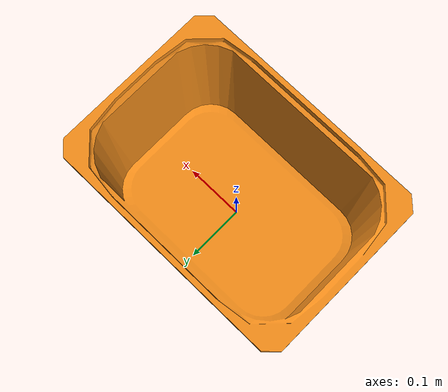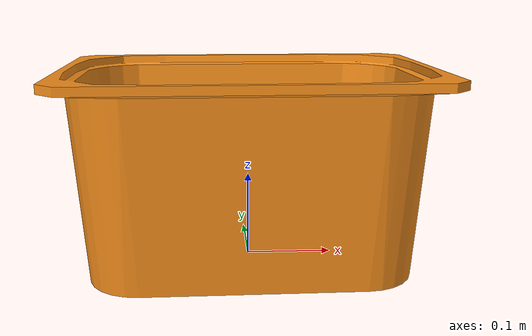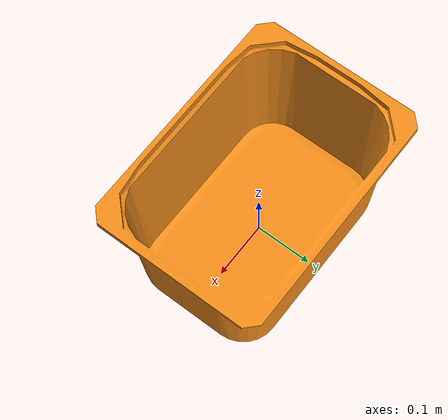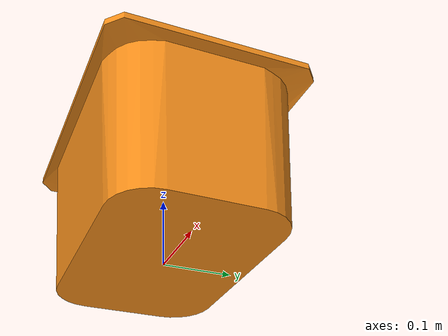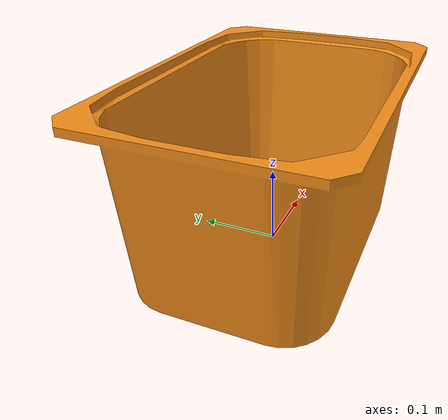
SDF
<?xml version="1.0" ?>
<sdf version="1.4">
  <model name='trofast'>
    <link name='body'>
      <inertial>
        <pose>0 0 0.115 0 0 0</pose>
        <mass>0.54</mass>
        <inertia>
          <ixx>0.0064</ixx>
          <ixy>0</ixy>
          <ixz>0</ixz>
          <iyy>0.0103</iyy>
          <iyz>0</iyz>
          <izz>0.012</izz>
        </inertia>
      </inertial>
      <visual name='trofast'>
        <pose>0 0 0 0 0 0</pose>
        <geometry>
          <mesh>
            <uri>model://trofast/meshes/trofast.stl</uri>
          </mesh>
          </geometry>
          <material>
            <script>
              <uri>file://media/materials/scripts/gazebo.material</uri>
              <name>Gazebo/Orange</name>
            </script>
          </material>
      </visual>
      <collision name='collision_trofast'>
        <pose>0 0 0 0 0 0</pose>
        <geometry>
          <mesh>
            <uri>model://trofast/meshes/trofast.stl</uri>
          </mesh>
        </geometry>
        <max_contacts>10</max_contacts>
      </collision>
    </link>
  </model>
</sdf>
